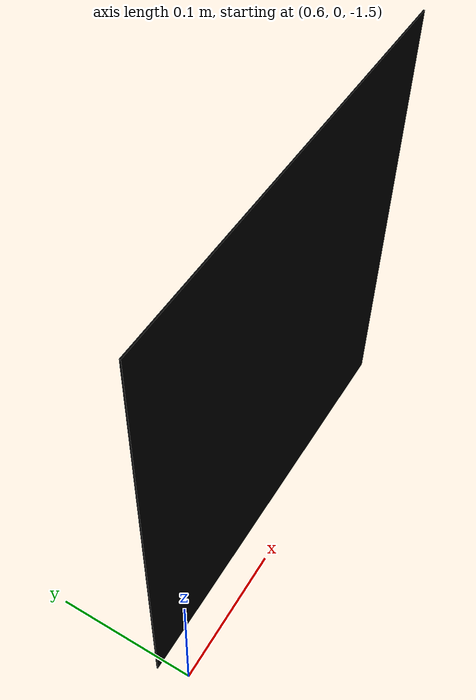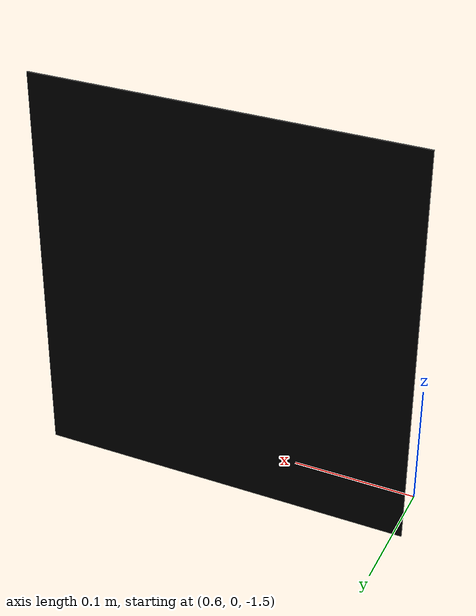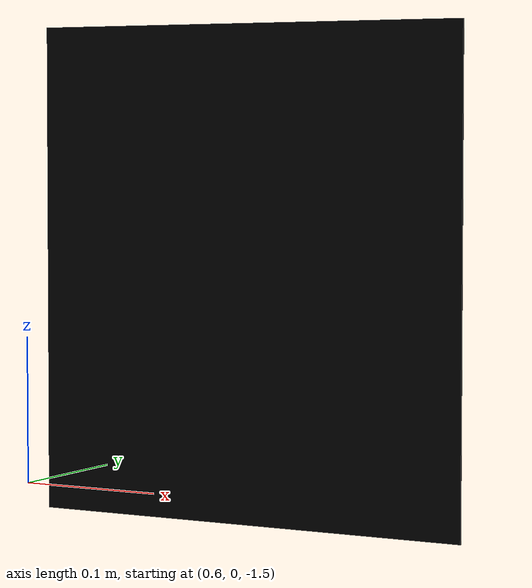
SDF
<?xml version="1.0" encoding="UTF-8"?>

<sdf version="1.10">
    <model name="GateRightImageLabel">
        <cast_shadows>false</cast_shadows>
        <link name="link">
            <visual name="right_side_label">
                <pose>0.755 0.026 -1.355 0 0 0</pose>
                <geometry>
                    <box>
                        <size>0.31 0.001 0.33</size>
                    </box>
                </geometry>
                <cast_shadows>false</cast_shadows>

                <material>
                    <ambient>0, 0, 0, 0</ambient>
                    <diffuse>0, 0, 0, 0</diffuse>
                    <specular>0, 0, 0, 0</specular>
                </material>
                <plugin filename="gz-sim-label-system" name="gz::sim::systems::Label">
                    <label>0</label>
                </plugin>
            </visual>
        </link>
        <static>true</static>
    </model>
</sdf>
